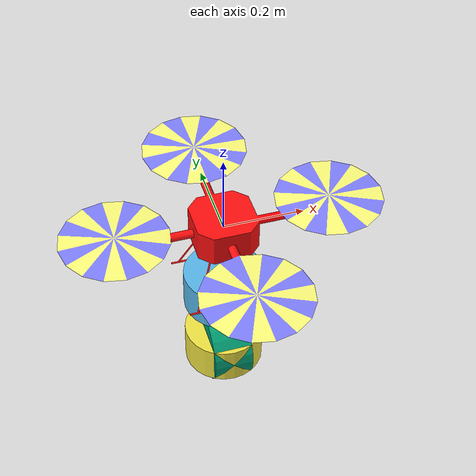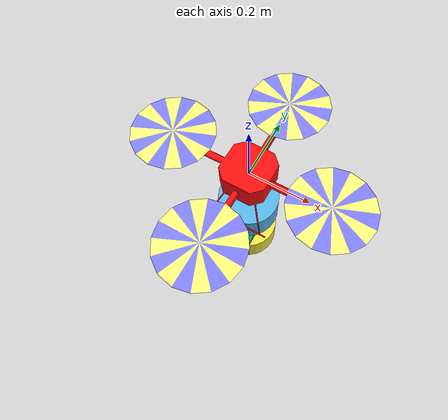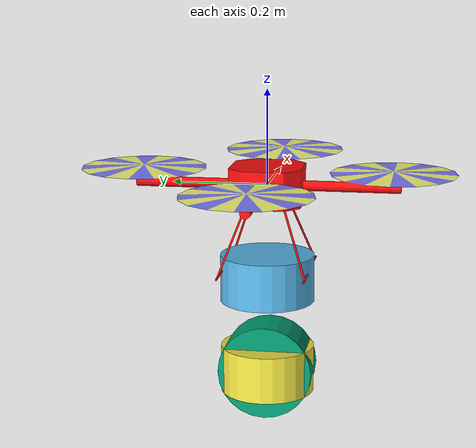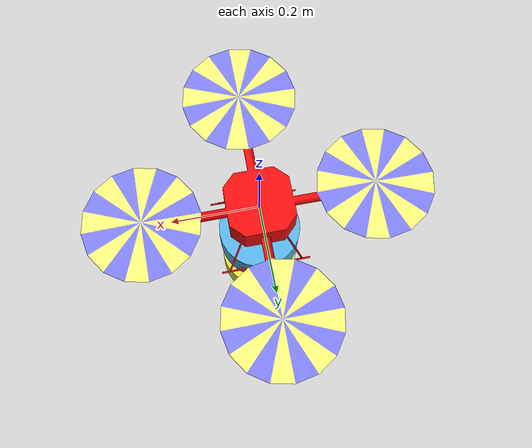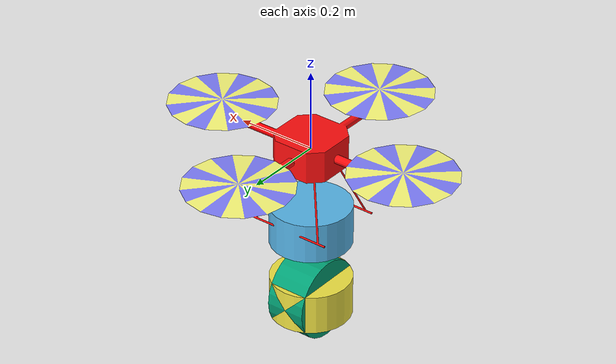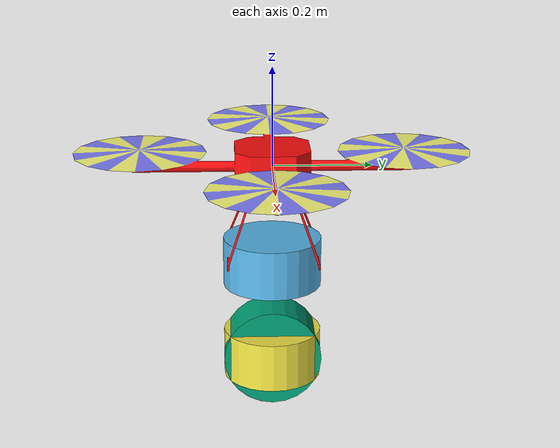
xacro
<?xml version="1.0"?>

<robot
  name="quadrotor"
  xmlns:xacro="http://ros.org/wiki/xacro"
>

    <xacro:property name="M_PI" value="3.1415926535897931" />

    <!-- Included URDF Files -->
    <xacro:include filename="$(find hector_quadrotor_description)/urdf/quadrotor_base.urdf.xacro" />

    <!-- Instantiate quadrotor_base_macro once (has no parameters atm) -->
    <xacro:quadrotor_base_macro />

    <!-- Downward facing camera -->

    <xacro:include filename="$(find GazeboSimulation)/urdf/generic_stereo_camera2.urdf.xacro" />
    <xacro:generic_stereo_camera name="" parent="base_link" ros_topic="camera/image" cam_info_topic="camera/camera_info" update_rate="20" res_x="640" res_y="480" image_format="R8G8B8" hfov="100" baseline=".1">
      <origin xyz="0.4 0 -0.0" rpy="0 ${M_PI/2} 0"/>
    </xacro:generic_stereo_camera>

</robot>

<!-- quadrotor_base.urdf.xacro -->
<robot xmlns:xacro="http://www.ros.org/wiki/xacro">

  <xacro:property name="pi" value="3.1415926535897931" />

  <!-- Main quadrotor link -->
  <xacro:macro name="quadrotor_base_macro">
    <link name="base_link">
      <inertial>
        <mass value="1.477" />
        <origin xyz="0 0 0" />
        <inertia ixx="0.01152" ixy="0.0" ixz="0.0" iyy="0.01152" iyz="0.0" izz="0.0218" />
      </inertial>

      <visual>
        <origin xyz="0 0 0" rpy="0 0 0" />
        <geometry>
          <mesh filename="package://hector_quadrotor_description/meshes/quadrotor/quadrotor_base.dae"/>
        </geometry>
      </visual>

      <collision>
        <origin xyz="0 0 0" rpy="0 0 0" />
        <geometry>
          <mesh filename="package://hector_quadrotor_description/meshes/quadrotor/quadrotor_base.stl"/>
        </geometry>
      </collision>
    </link>

    <!-- Sonar height sensor -->

  </xacro:macro>
</robot>

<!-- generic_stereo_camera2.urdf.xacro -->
<robot xmlns:xacro="http://www.ros.org/wiki/xacro">

  <xacro:property name="M_PI" value="3.1415926535897931" />

  <xacro:macro name="generic_stereo_camera" params="name parent *origin ros_topic cam_info_topic update_rate res_x res_y image_format hfov baseline">

  <link name="${name}_gimbal">
	<visual>
        <origin xyz="0 0 0" rpy="0 0 0" />
        <geometry>
			<cylinder length=".1" radius=".1" />
        </geometry>
    </visual>

    <collision>
      <origin xyz="0 0 0" rpy="0 0 0" />
      <geometry>
        <cylinder length=".0001" radius=".0001" />
      </geometry>
    </collision>

    <inertial>
      <mass value="1" />
      <origin xyz="0 0 0" rpy="0 0 0"/>
      <inertia ixx="1e-6" ixy="0" ixz="0" iyy="1e-6" iyz="0" izz="1e-6" />
    </inertial>
  </link>

  <!-- Stereo Camera -->
  <joint name="${name}_gimbal_joint" type="revolute">
    <!-- optical frame collocated with tilting DOF -->
    <limit effort="0.1" velocity="0.1" lower="-0.001" upper="0.001" />
    <safety_controller k_velocity="10" k_position="15" soft_lower_limit="-2.0" soft_upper_limit="0.5" />
    <origin xyz="0.0 0 -0.2" rpy="0 0 0"/>
    <parent link="${parent}"/>
    <child link="${name}_gimbal"/>
  </joint>

  <joint name="${name}_left_camera_frame_joint" type="fixed">
    <!-- optical frame collocated with tilting DOF -->
    <limit effort="1000.0" lower="0.0" upper="0.548" velocity="0.5"/>
    <origin xyz="0.0 0 -0.2" rpy="0 1.57 0"/>
    <parent link="${name}_gimbal"/>
    <child link="${name}_left_camera_frame"/>
  </joint>

  <link name="${name}_left_camera_frame">
	<visual>
        <origin xyz="0 0 0" rpy="0 0 0" />
        <geometry>
			<cylinder length=".1" radius=".1" />
        </geometry>
    </visual>

    <collision>
      <origin xyz="0 0 0" rpy="0 0 0" />
      <geometry>
        <cylinder length=".0001" radius=".0001" />
      </geometry>
    </collision>

    <inertial>
      <mass value="1e-5" />
      <origin xyz="0 0 0" rpy="0 0 0"/>
      <inertia ixx="1e-6" ixy="0" ixz="0" iyy="1e-6" iyz="0" izz="1e-6" />
    </inertial>
  </link>

  <joint name="${name}_left_camera_optical_frame_joint" type="fixed">
    <origin xyz="0 0 0" rpy="-1.5708 0.0 -1.5708" />
    <axis xyz="0 0 1" />
    <parent link="${name}_left_camera_frame" />
    <child link="${name}_left_camera_optical_frame"/>
    <limit effort="300" velocity="1" lower="-2.61799387799" upper="2.6128806087" />
	<dynamics damping="50" friction="1"/>
  </joint>

  <link name="${name}_left_camera_optical_frame">
	  <visual>
        <origin xyz="0 0 0" rpy="0 0 0" />
        <geometry>
			<cylinder length=".1" radius=".1" />
        </geometry>
    </visual>

    <collision>
      <origin xyz="0 0 0" rpy="0 0 0" />
      <geometry>
        <cylinder length=".0001" radius=".0001" />
      </geometry>
    </collision>

    <inertial>
      <mass value="1e-5" />
      <origin xyz="0 0 0" rpy="0 0 0"/>
      <inertia ixx="1e-6" ixy="0" ixz="0" iyy="1e-6" iyz="0" izz="1e-6" />
    </inertial>
 </link>

  <transmission name="${name}_tran1">
	<type>transmission_interface/SimpleTransmission</type>
	<joint name="${name}_gimbal_joint">
		<hardwareInterface>EffortJointInterface</hardwareInterface>
	</joint>
	<actuator name="${name}_motor1">
		<mechanicalReduction>1</mechanicalReduction>
		<hardwareInterface>EffortJointInterface</hardwareInterface>
	</actuator>
</transmission>

  <gazebo reference="${name}_left_camera_frame">
    <sensor type="multicamera" name="stereo_camera">
      <!-- see MultiSenseSLPlugin.h for available modes -->
      <update_rate>30.0</update_rate>
      <camera name="left">
        <!-- Spec sheet says 80deg X 45deg @ 1024x544pix.  Based on feedback
             from teams, we're instead doing 80deg X 80deg @ 800x800pix. -->
        <horizontal_fov>1.3962634</horizontal_fov>
        <image>
          <width>800</width>
          <height>800</height>
          <format>R8G8B8</format>
        </image>
        <clip>
          <near>0.02</near>
          <far>300</far>
        </clip>
        <noise>
          <type>gaussian</type>
          <mean>0.0</mean>
          <stddev>0.007</stddev>
        </noise>
      </camera>
      <camera name="right">
        <pose>0 ${-baseline} 0 0 0 0</pose>
        <!-- Spec sheet says 80deg X 45deg @ 1024x544pix.  Based on feedback
             from teams, we're instead doing 80deg X 80deg @ 800x800pix. -->
        <horizontal_fov>1.3962634</horizontal_fov>
        <image>
          <width>800</width>
          <height>800</height>
          <format>R8G8B8</format>
        </image>
        <clip>
          <near>0.02</near>
          <far>300</far>
        </clip>
        <noise>
          <type>gaussian</type>
          <mean>0.0</mean>
          <stddev>0.007</stddev>
        </noise>
      </camera>
      <plugin name="stereo_camera_controller" filename="libgazebo_ros_multicamera.so">
        <cameraName>${name}</cameraName>
        <imageTopicName>image_raw</imageTopicName>
        <cameraInfoTopicName>camera_info</cameraInfoTopicName>
        <frameName>${name}_left_camera_optical_frame</frameName>
        <hackBaseline>${baseline}</hackBaseline>
      </plugin>
    </sensor>
  </gazebo>

  <joint name="${name}_right_camera_frame_joint" type="fixed">
    <origin xyz="0.0 ${-baseline} -0.0"/>
    <parent link="${name}_left_camera_frame"/>
    <child link="${name}_right_camera_frame"/>
  </joint>

  <link name="${name}_right_camera_frame">
  </link>
  <joint name="${name}_right_camera_optical_frame_joint" type="fixed">
    <origin xyz="0 0 0" rpy="-1.5708 0.0 -1.5708" />
    <parent link="${name}_right_camera_frame" />
    <child link="${name}_right_camera_optical_frame"/>
  </joint>
  <link name="${name}_right_camera_optical_frame"/>

  </xacro:macro>

</robot>
